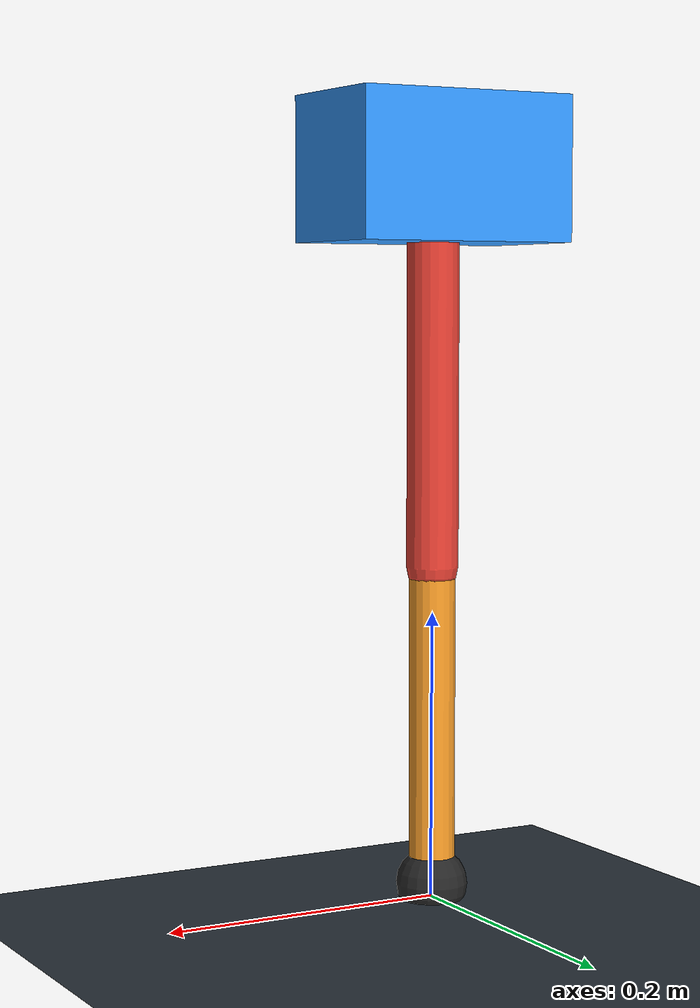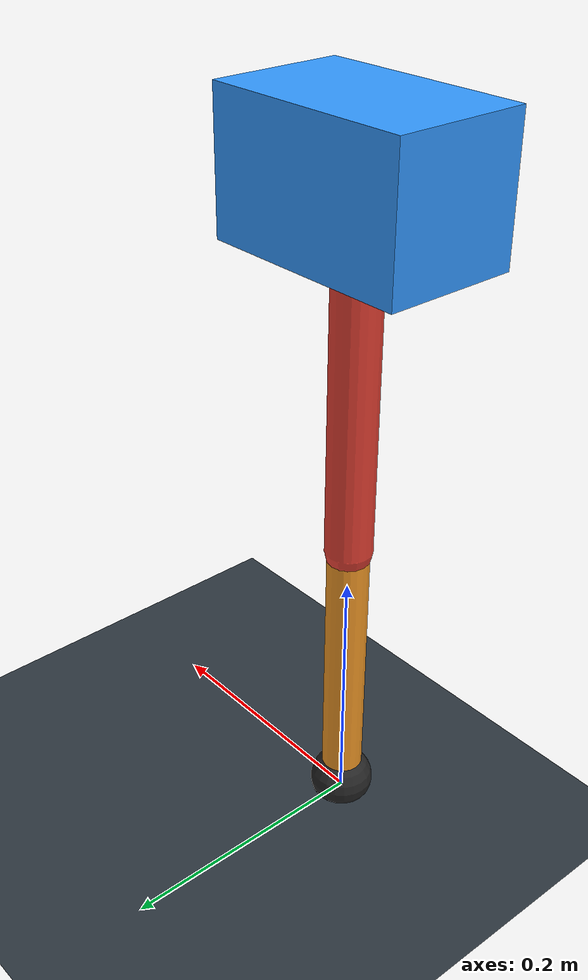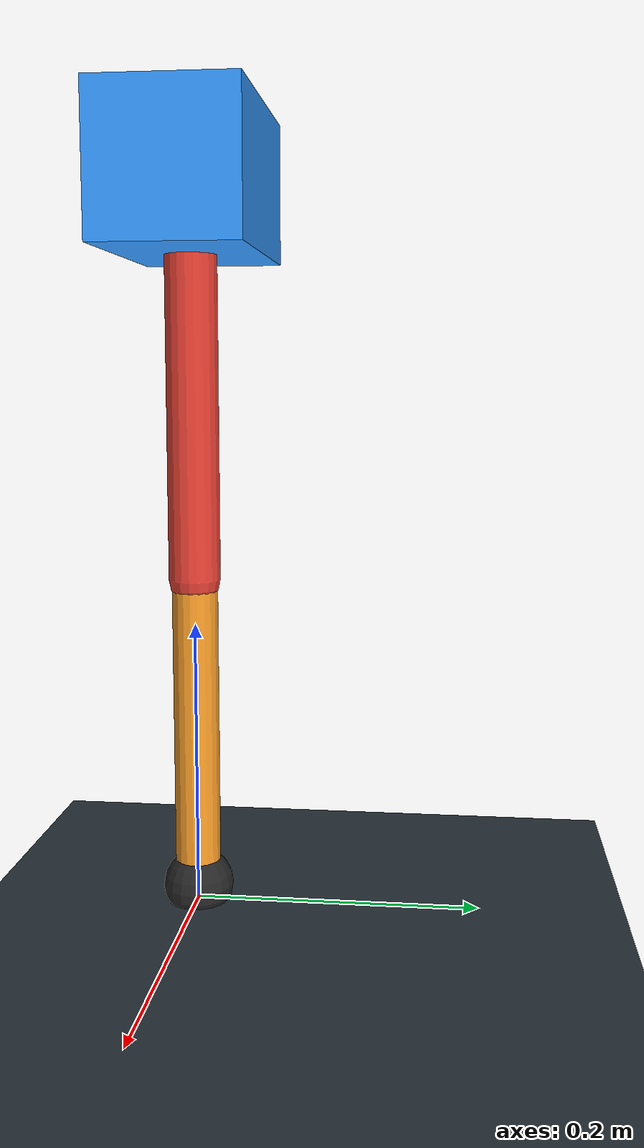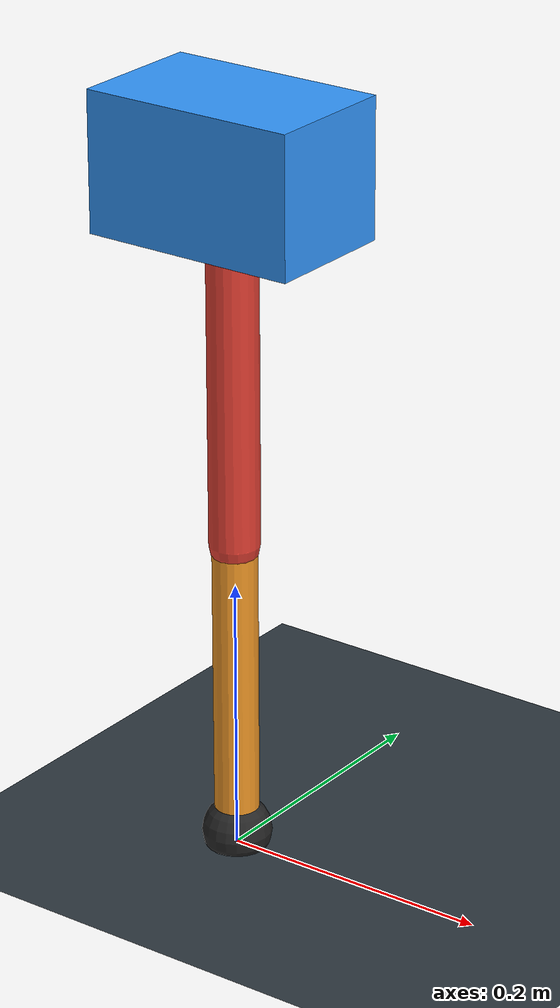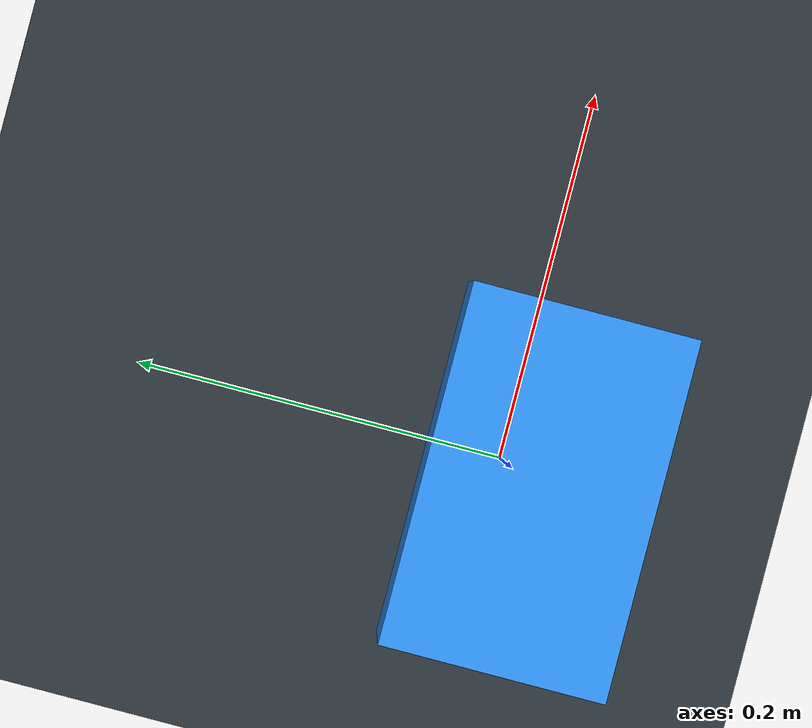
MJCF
<mujoco model="single_axis_two_bar">
  <compiler angle="radian" inertiafromgeom="true"/>
  <option timestep="0.001" integrator="implicitfast" gravity="0 0 -9.81"/>
  <default>
    <joint damping="0.08"/>
    <geom friction="1.2 0.01 0.0001" condim="3"/>
  </default>
  <worldbody>
    <geom name="floor" type="plane" size="5 5 0.1" rgba="0.18 0.22 0.25 1"/>
    <body name="carriage" pos="0 0 0.5053942366167713">
      <joint name="pole_slide" type="slide" axis="0 0 1"/>
      <geom name="payload" type="box" size="0.08 0.05 0.05" mass="3.4920563405203033" rgba="0.2 0.6 1 1"/>
      <body name="thigh" pos="0 0 0">
        <joint name="hip" type="hinge" axis="0 1 0"/>
        <geom name="thigh_link" type="capsule" fromto="0 0 0 0 0 -0.27338141385926973" size="0.018" mass="0.1947878697913962" rgba="0.9 0.25 0.2 1"/>
        <body name="shank" pos="0 0 -0.27338141385926973">
          <joint name="knee" type="hinge" axis="0 1 0"/>
          <geom name="shank_link" type="capsule" fromto="0 0 0 0 0 -0.22187037646729862" size="0.016" mass="0.15808557499131104" rgba="0.95 0.6 0.15 1"/>
          <geom name="foot" type="sphere" pos="0 0 -0.22187037646729862" size="0.025" mass="0.03" rgba="0.15 0.15 0.15 1"/>
          <site name="toe" pos="0 0 -0.22187037646729862" size="0.008"/>
        </body>
      </body>
    </body>
  </worldbody>
  <actuator>
    <motor name="hip_motor" joint="hip" ctrlrange="-28.45280136491693 28.45280136491693"/>
    <motor name="knee_motor" joint="knee" ctrlrange="-166.86730695431044 166.86730695431044"/>
  </actuator>
</mujoco>
